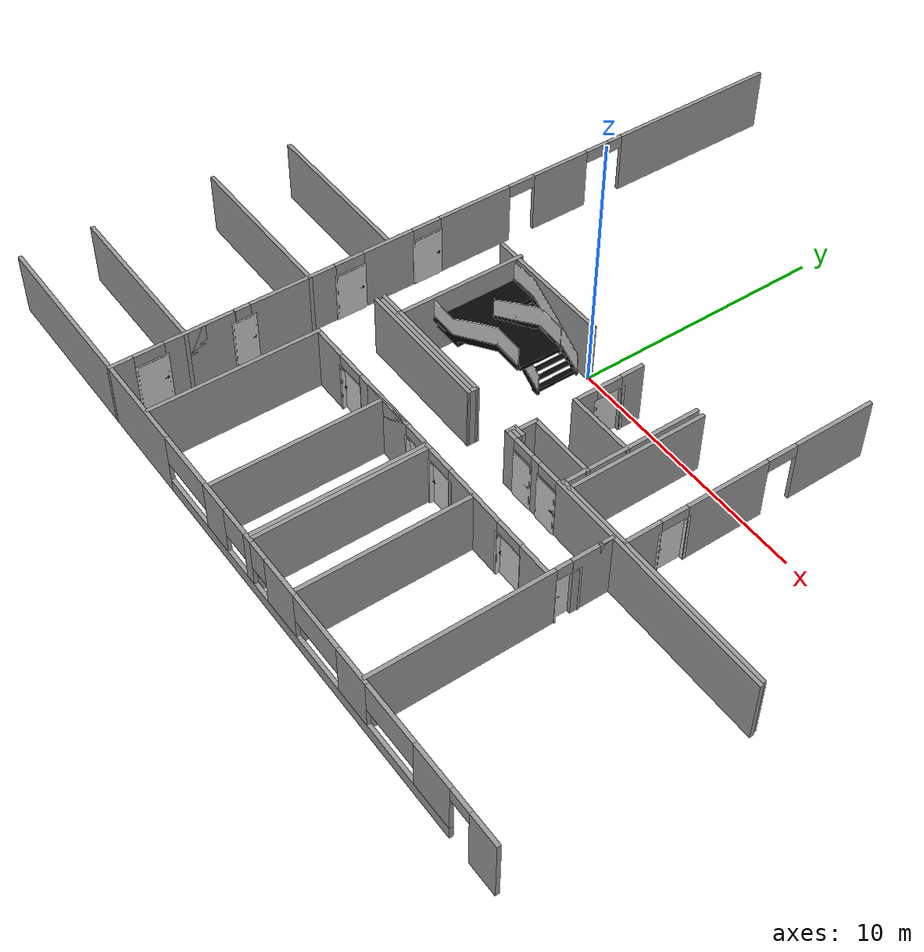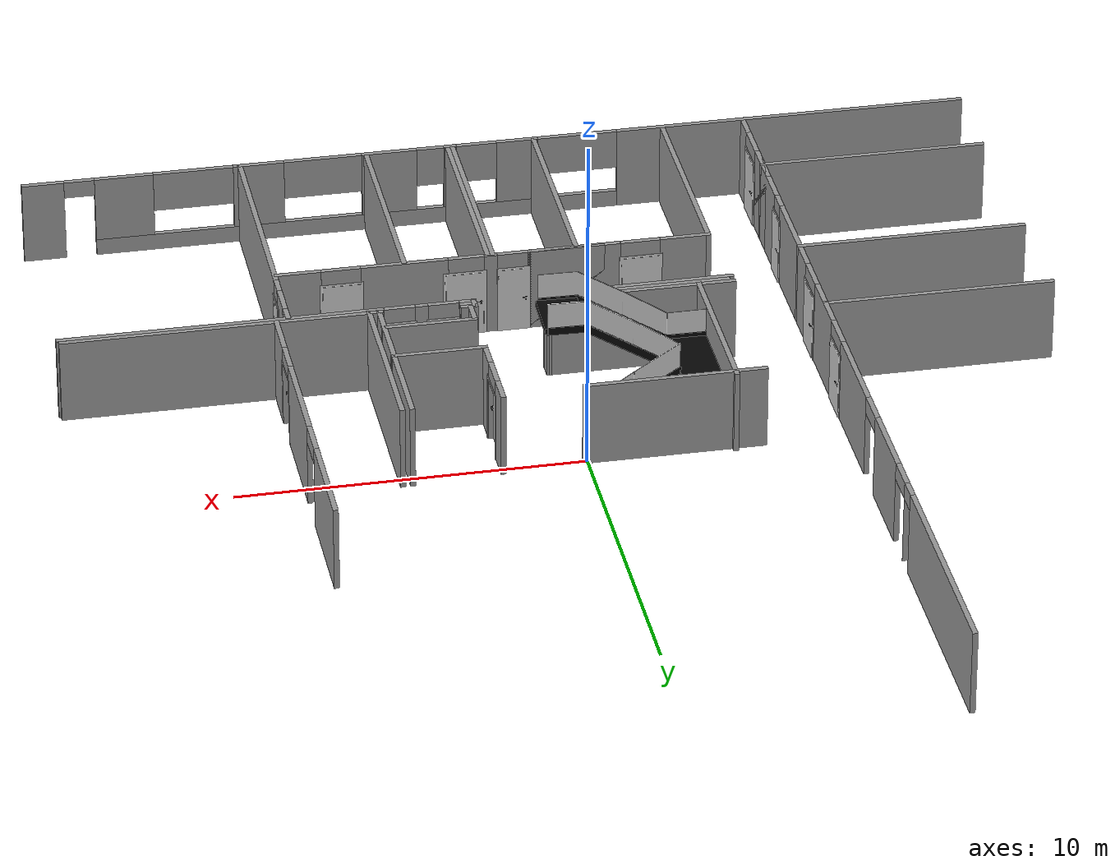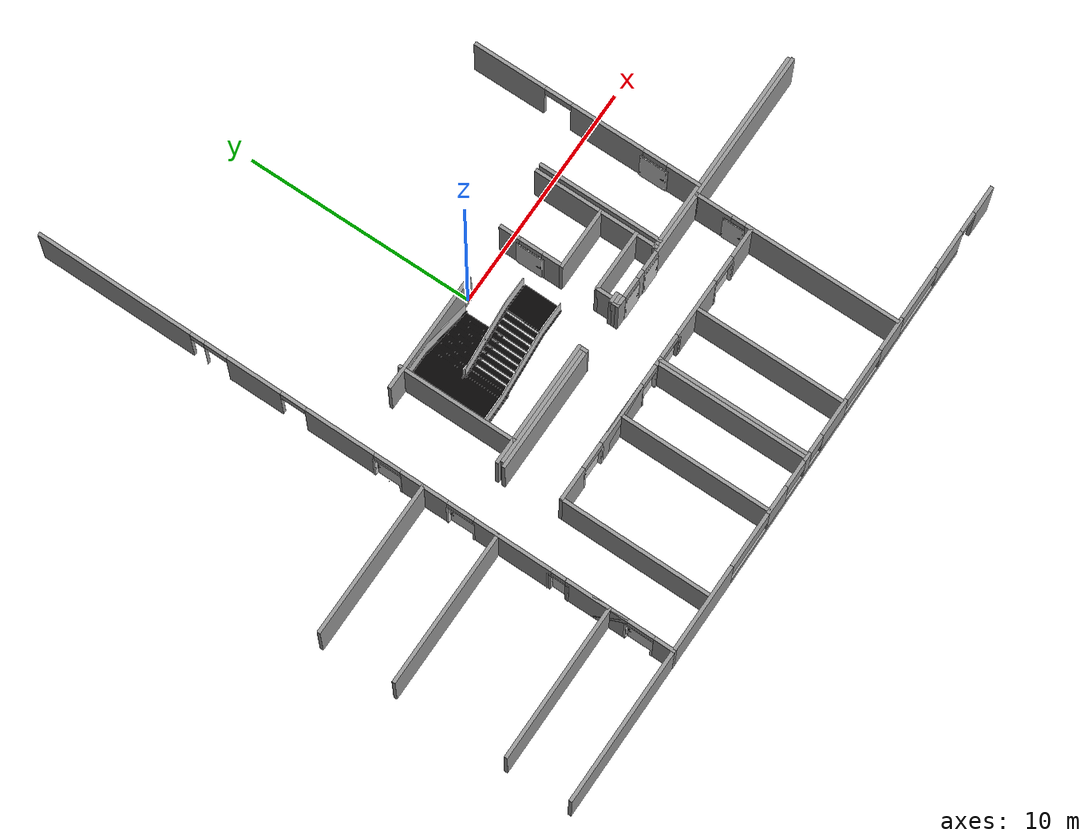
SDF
<sdf version="1.6">
 <world name="default">
  <model name="basement">
   <link name="Wall_100">
    <pose>8.19919 -5.19776 0 0 -0 0</pose>
    <visual name="Wall_100_Visual_0">
     <pose>-5.7562 0 1.25 0 -0 0</pose>
     <geometry><box><size>0.487607 0.15 2.5</size></box></geometry>
     <material>
      <script><uri>file://media/materials/scripts/gazebo.material</uri><name>Gazebo/Grey</name></script>
      <ambient>1 1 1 1</ambient>
     </material>
    </visual>
    <collision name="Wall_100_Collision_0">
     <geometry><box><size>0.487607 0.15 2.5</size></box></geometry>
     <pose>-5.7562 0 1.25 0 -0 0</pose>
    </collision>
    <visual name="Wall_100_Visual_1">
     <pose>-4.42761 0 1.25 0 -0 0</pose>
     <geometry><box><size>0.369565 0.15 2.5</size></box></geometry>
     <material>
      <script><uri>file://media/materials/scripts/gazebo.material</uri><name>Gazebo/Grey</name></script>
      <ambient>1 1 1 1</ambient>
     </material>
    </visual>
    <collision name="Wall_100_Collision_1">
     <geometry><box><size>0.369565 0.15 2.5</size></box></geometry>
     <pose>-4.42761 0 1.25 0 -0 0</pose>
    </collision>
    <visual name="Wall_100_Visual_2">
     <pose>1.32859 0 1.25 0 -0 0</pose>
     <geometry><box><size>9.34283 0.15 2.5</size></box></geometry>
     <material>
      <script><uri>file://media/materials/scripts/gazebo.material</uri><name>Gazebo/Grey</name></script>
      <ambient>1 1 1 1</ambient>
     </material>
    </visual>
    <collision name="Wall_100_Collision_2">
     <geometry><box><size>9.34283 0.15 2.5</size></box></geometry>
     <pose>1.32859 0 1.25 0 -0 0</pose>
    </collision>
    <visual name="Wall_100_Visual_3">
     <pose>-5.06239 0 2.25 0 -0 0</pose>
     <geometry><box><size>0.9 0.15 0.5</size></box></geometry>
     <material>
      <script><uri>file://media/materials/scripts/gazebo.material</uri><name>Gazebo/Grey</name></script>
      <ambient>1 1 1 1</ambient>
     </material>
    </visual>
    <collision name="Wall_100_Collision_3">
     <geometry><box><size>0.9 0.15 0.5</size></box></geometry>
     <pose>-5.06239 0 2.25 0 -0 0</pose>
    </collision>
    <visual name="Wall_100_Visual_4">
     <pose>-3.79283 0 2.25 0 -0 0</pose>
     <geometry><box><size>0.9 0.15 0.5</size></box></geometry>
     <material>
      <script><uri>file://media/materials/scripts/gazebo.material</uri><name>Gazebo/Grey</name></script>
      <ambient>1 1 1 1</ambient>
     </material>
    </visual>
    <collision name="Wall_100_Collision_4">
     <geometry><box><size>0.9 0.15 0.5</size></box></geometry>
     <pose>-3.79283 0 2.25 0 -0 0</pose>
    </collision>
   </link>
   <link name="Wall_102">
    <collision name="Wall_102_Collision">
     <geometry><box><size>9.25 0.15 2.5</size></box></geometry>
     <pose>0 0 1.25 0 -0 0</pose>
    </collision>
    <visual name="Wall_102_Visual">
     <pose>0 0 1.25 0 -0 0</pose>
     <geometry><box><size>9.25 0.15 2.5</size></box></geometry>
     <material>
      <script><uri>file://media/materials/scripts/gazebo.material</uri><name>Gazebo/Grey</name></script>
      <ambient>1 1 1 1</ambient>
     </material>
    </visual>
    <pose>9.51475 -5.05392 0 0 -0 0</pose>
   </link>
   <link name="Wall_104">
    <collision name="Wall_104_Collision">
     <geometry><box><size>5.5 0.15 2.5</size></box></geometry>
     <pose>0 0 1.25 0 -0 0</pose>
    </collision>
    <visual name="Wall_104_Visual">
     <pose>0 0 1.25 0 -0 0</pose>
     <geometry><box><size>5.5 0.15 2.5</size></box></geometry>
     <material>
      <script><uri>file://media/materials/scripts/gazebo.material</uri><name>Gazebo/Grey</name></script>
      <ambient>1 1 1 1</ambient>
     </material>
    </visual>
    <pose>5.28935 -2.40756 0 0 0 -1.5708</pose>
   </link>
   <link name="Wall_11">
    <collision name="Wall_11_Collision">
     <geometry><box><size>6.75 0.15 2.5</size></box></geometry>
     <pose>0 0 1.25 0 -0 0</pose>
    </collision>
    <visual name="Wall_11_Visual">
     <pose>0 0 1.25 0 -0 0</pose>
     <geometry><box><size>6.75 0.15 2.5</size></box></geometry>
     <material>
      <script><uri>file://media/materials/scripts/gazebo.material</uri><name>Gazebo/Grey</name></script>
      <ambient>1 1 1 1</ambient>
     </material>
    </visual>
    <pose>-10.8091 -11.3705 0 0 -0 0</pose>
   </link>
   <link name="Wall_112">
    <collision name="Wall_112_Collision">
     <geometry><box><size>5.5 0.15 2.5</size></box></geometry>
     <pose>0 0 1.25 0 -0 0</pose>
    </collision>
    <visual name="Wall_112_Visual">
     <pose>0 0 1.25 0 -0 0</pose>
     <geometry><box><size>5.5 0.15 2.5</size></box></geometry>
     <material>
      <script><uri>file://media/materials/scripts/gazebo.material</uri><name>Gazebo/Grey</name></script>
      <ambient>1 1 1 1</ambient>
     </material>
    </visual>
    <pose>5.00796 -2.4103 0 0 0 -1.5708</pose>
   </link>
   <link name="Wall_118">
    <pose>2.41948 -1.1745 0 0 -0 1.5708</pose>
    <visual name="Wall_118_Visual_0">
     <pose>-0.97086 0 1.25 0 -0 0</pose>
     <geometry><box><size>0.808281 0.15 2.5</size></box></geometry>
     <material>
      <script><uri>file://media/materials/scripts/gazebo.material</uri><name>Gazebo/Grey</name></script>
      <ambient>1 1 1 1</ambient>
     </material>
    </visual>
    <collision name="Wall_118_Collision_0">
     <geometry><box><size>0.808281 0.15 2.5</size></box></geometry>
     <pose>-0.97086 0 1.25 0 -0 0</pose>
    </collision>
    <visual name="Wall_118_Visual_1">
     <pose>0.913802 0 1.25 0 -0 0</pose>
     <geometry><box><size>0.922397 0.15 2.5</size></box></geometry>
     <material>
      <script><uri>file://media/materials/scripts/gazebo.material</uri><name>Gazebo/Grey</name></script>
      <ambient>1 1 1 1</ambient>
     </material>
    </visual>
    <collision name="Wall_118_Collision_1">
     <geometry><box><size>0.922397 0.15 2.5</size></box></geometry>
     <pose>0.913802 0 1.25 0 -0 0</pose>
    </collision>
    <visual name="Wall_118_Visual_2">
     <pose>-0.057058 0 2.25 0 -0 0</pose>
     <geometry><box><size>1.01932 0.15 0.5</size></box></geometry>
     <material>
      <script><uri>file://media/materials/scripts/gazebo.material</uri><name>Gazebo/Grey</name></script>
      <ambient>1 1 1 1</ambient>
     </material>
    </visual>
    <collision name="Wall_118_Collision_2">
     <geometry><box><size>1.01932 0.15 0.5</size></box></geometry>
     <pose>-0.057058 0 2.25 0 -0 0</pose>
    </collision>
   </link>
   <link name="Wall_120">
    <collision name="Wall_120_Collision">
     <geometry><box><size>2.75 0.15 2.5</size></box></geometry>
     <pose>0 0 1.25 0 -0 0</pose>
    </collision>
    <visual name="Wall_120_Visual">
     <pose>0 0 1.25 0 -0 0</pose>
     <geometry><box><size>2.75 0.15 2.5</size></box></geometry>
     <material>
      <script><uri>file://media/materials/scripts/gazebo.material</uri><name>Gazebo/Grey</name></script>
      <ambient>1 1 1 1</ambient>
     </material>
    </visual>
    <pose>3.71948 -2.60376 0 0 -0 0</pose>
   </link>
   <link name="Wall_122">
    <collision name="Wall_122_Collision">
     <geometry><box><size>2.75 0.15 2.5</size></box></geometry>
     <pose>0 0 1.25 0 -0 0</pose>
    </collision>
    <visual name="Wall_122_Visual">
     <pose>0 0 1.25 0 -0 0</pose>
     <geometry><box><size>2.75 0.15 2.5</size></box></geometry>
     <material>
      <script><uri>file://media/materials/scripts/gazebo.material</uri><name>Gazebo/Grey</name></script>
      <ambient>1 1 1 1</ambient>
     </material>
    </visual>
    <pose>3.71502 -4.18637 0 0 -0 0</pose>
   </link>
   <link name="Wall_124">
    <collision name="Wall_124_Collision">
     <geometry><box><size>0.5 0.15 2.5</size></box></geometry>
     <pose>0 0 1.25 0 -0 0</pose>
    </collision>
    <visual name="Wall_124_Visual">
     <pose>0 0 1.25 0 -0 0</pose>
     <geometry><box><size>0.5 0.15 2.5</size></box></geometry>
     <material>
      <script><uri>file://media/materials/scripts/gazebo.material</uri><name>Gazebo/Grey</name></script>
      <ambient>1 1 1 1</ambient>
     </material>
    </visual>
    <pose>2.45081 -4.90231 0 0 -0 0</pose>
   </link>
   <link name="Wall_126">
    <collision name="Wall_126_Collision">
     <geometry><box><size>0.4 0.15 2.5</size></box></geometry>
     <pose>0 0 1.25 0 -0 0</pose>
    </collision>
    <visual name="Wall_126_Visual">
     <pose>0 0 1.25 0 -0 0</pose>
     <geometry><box><size>0.4 0.15 2.5</size></box></geometry>
     <material>
      <script><uri>file://media/materials/scripts/gazebo.material</uri><name>Gazebo/Grey</name></script>
      <ambient>1 1 1 1</ambient>
     </material>
    </visual>
    <pose>2.27581 -5.05714 0 0 0 -1.5708</pose>
   </link>
   <link name="Wall_128">
    <collision name="Wall_128_Collision">
     <geometry><box><size>0.75 0.15 2.5</size></box></geometry>
     <pose>0 0 1.25 0 -0 0</pose>
    </collision>
    <visual name="Wall_128_Visual">
     <pose>0 0 1.25 0 -0 0</pose>
     <geometry><box><size>0.75 0.15 2.5</size></box></geometry>
     <material>
      <script><uri>file://media/materials/scripts/gazebo.material</uri><name>Gazebo/Grey</name></script>
      <ambient>1 1 1 1</ambient>
     </material>
    </visual>
    <pose>2.41502 -4.54603 0 0 0 -1.5708</pose>
   </link>
   <link name="Wall_13">
    <collision name="Wall_13_Collision">
     <geometry><box><size>6.75 0.15 2.5</size></box></geometry>
     <pose>0 0 1.25 0 -0 0</pose>
    </collision>
    <visual name="Wall_13_Visual">
     <pose>0 0 1.25 0 -0 0</pose>
     <geometry><box><size>6.75 0.15 2.5</size></box></geometry>
     <material>
      <script><uri>file://media/materials/scripts/gazebo.material</uri><name>Gazebo/Grey</name></script>
      <ambient>1 1 1 1</ambient>
     </material>
    </visual>
    <pose>-10.8096 -6.47351 0 0 -0 0</pose>
   </link>
   <link name="Wall_130">
    <pose>7.59342 -9.67316 0 0 -0 1.5708</pose>
    <visual name="Wall_130_Visual_0">
     <pose>-1.10011 0 1.25 0 -0 0</pose>
     <geometry><box><size>6.79978 0.15 2.5</size></box></geometry>
     <material>
      <script><uri>file://media/materials/scripts/gazebo.material</uri><name>Gazebo/Grey</name></script>
      <ambient>1 1 1 1</ambient>
     </material>
    </visual>
    <collision name="Wall_130_Collision_0">
     <geometry><box><size>6.79978 0.15 2.5</size></box></geometry>
     <pose>-1.10011 0 1.25 0 -0 0</pose>
    </collision>
    <visual name="Wall_130_Visual_1">
     <pose>3.69951 0 1.25 0 -0 0</pose>
     <geometry><box><size>1.60098 0.15 2.5</size></box></geometry>
     <material>
      <script><uri>file://media/materials/scripts/gazebo.material</uri><name>Gazebo/Grey</name></script>
      <ambient>1 1 1 1</ambient>
     </material>
    </visual>
    <collision name="Wall_130_Collision_1">
     <geometry><box><size>1.60098 0.15 2.5</size></box></geometry>
     <pose>3.69951 0 1.25 0 -0 0</pose>
    </collision>
    <visual name="Wall_130_Visual_2">
     <pose>4.21195 0 1.25 0 -0 0</pose>
     <geometry><box><size>0.576095 0.15 2.5</size></box></geometry>
     <material>
      <script><uri>file://media/materials/scripts/gazebo.material</uri><name>Gazebo/Grey</name></script>
      <ambient>1 1 1 1</ambient>
     </material>
    </visual>
    <collision name="Wall_130_Collision_2">
     <geometry><box><size>0.576095 0.15 2.5</size></box></geometry>
     <pose>4.21195 0 1.25 0 -0 0</pose>
    </collision>
    <visual name="Wall_130_Visual_3">
     <pose>2.59646 0 2.25 0 -0 0</pose>
     <geometry><box><size>0.593362 0.15 0.5</size></box></geometry>
     <material>
      <script><uri>file://media/materials/scripts/gazebo.material</uri><name>Gazebo/Grey</name></script>
      <ambient>1 1 1 1</ambient>
     </material>
    </visual>
    <collision name="Wall_130_Collision_3">
     <geometry><box><size>0.593362 0.15 0.5</size></box></geometry>
     <pose>2.59646 0 2.25 0 -0 0</pose>
    </collision>
   </link>
   <link name="Wall_132">
    <collision name="Wall_132_Collision">
     <geometry><box><size>6.6 0.15 2.5</size></box></geometry>
     <pose>0 0 1.25 0 -0 0</pose>
    </collision>
    <visual name="Wall_132_Visual">
     <pose>0 0 1.25 0 -0 0</pose>
     <geometry><box><size>6.6 0.15 2.5</size></box></geometry>
     <material>
      <script><uri>file://media/materials/scripts/gazebo.material</uri><name>Gazebo/Grey</name></script>
      <ambient>1 1 1 1</ambient>
     </material>
    </visual>
    <pose>-5.06165 -10.8664 0 0 0 -1.5708</pose>
   </link>
   <link name="Wall_134">
    <pose>1.23835 -7.64141 0 0 -0 0</pose>
    <visual name="Wall_134_Visual_0">
     <pose>-5.62659 0 1.25 0 -0 0</pose>
     <geometry><box><size>1.49682 0.15 2.5</size></box></geometry>
     <material>
      <script><uri>file://media/materials/scripts/gazebo.material</uri><name>Gazebo/Grey</name></script>
      <ambient>1 1 1 1</ambient>
     </material>
    </visual>
    <collision name="Wall_134_Collision_0">
     <geometry><box><size>1.49682 0.15 2.5</size></box></geometry>
     <pose>-5.62659 0 1.25 0 -0 0</pose>
    </collision>
    <visual name="Wall_134_Visual_1">
     <pose>-2.35576 0 1.25 0 -0 0</pose>
     <geometry><box><size>2.70875 0.15 2.5</size></box></geometry>
     <material>
      <script><uri>file://media/materials/scripts/gazebo.material</uri><name>Gazebo/Grey</name></script>
      <ambient>1 1 1 1</ambient>
     </material>
    </visual>
    <collision name="Wall_134_Collision_1">
     <geometry><box><size>2.70875 0.15 2.5</size></box></geometry>
     <pose>-2.35576 0 1.25 0 -0 0</pose>
    </collision>
    <visual name="Wall_134_Visual_2">
     <pose>-2.12152 0 1.25 0 -0 0</pose>
     <geometry><box><size>2.24027 0.15 2.5</size></box></geometry>
     <material>
      <script><uri>file://media/materials/scripts/gazebo.material</uri><name>Gazebo/Grey</name></script>
      <ambient>1 1 1 1</ambient>
     </material>
    </visual>
    <collision name="Wall_134_Collision_2">
     <geometry><box><size>2.24027 0.15 2.5</size></box></geometry>
     <pose>-2.12152 0 1.25 0 -0 0</pose>
    </collision>
    <visual name="Wall_134_Visual_3">
     <pose>0.087487 0 1.25 0 -0 0</pose>
     <geometry><box><size>0.377744 0.15 2.5</size></box></geometry>
     <material>
      <script><uri>file://media/materials/scripts/gazebo.material</uri><name>Gazebo/Grey</name></script>
      <ambient>1 1 1 1</ambient>
     </material>
    </visual>
    <collision name="Wall_134_Collision_3">
     <geometry><box><size>0.377744 0.15 2.5</size></box></geometry>
     <pose>0.087487 0 1.25 0 -0 0</pose>
    </collision>
    <visual name="Wall_134_Visual_4">
     <pose>2.60072 0 1.25 0 -0 0</pose>
     <geometry><box><size>2.55041 0.15 2.5</size></box></geometry>
     <material>
      <script><uri>file://media/materials/scripts/gazebo.material</uri><name>Gazebo/Grey</name></script>
      <ambient>1 1 1 1</ambient>
     </material>
    </visual>
    <collision name="Wall_134_Collision_4">
     <geometry><box><size>2.55041 0.15 2.5</size></box></geometry>
     <pose>2.60072 0 1.25 0 -0 0</pose>
    </collision>
    <visual name="Wall_134_Visual_5">
     <pose>5.69975 0 1.25 0 -0 0</pose>
     <geometry><box><size>1.35049 0.15 2.5</size></box></geometry>
     <material>
      <script><uri>file://media/materials/scripts/gazebo.material</uri><name>Gazebo/Grey</name></script>
      <ambient>1 1 1 1</ambient>
     </material>
    </visual>
    <collision name="Wall_134_Collision_5">
     <geometry><box><size>1.35049 0.15 2.5</size></box></geometry>
     <pose>5.69975 0 1.25 0 -0 0</pose>
    </collision>
    <visual name="Wall_134_Visual_6">
     <pose>-4.29684 0 2.25 0 -0 0</pose>
     <geometry><box><size>1.16267 0.15 0.5</size></box></geometry>
     <material>
      <script><uri>file://media/materials/scripts/gazebo.material</uri><name>Gazebo/Grey</name></script>
      <ambient>1 1 1 1</ambient>
     </material>
    </visual>
    <collision name="Wall_134_Collision_6">
     <geometry><box><size>1.16267 0.15 0.5</size></box></geometry>
     <pose>-4.29684 0 2.25 0 -0 0</pose>
    </collision>
    <visual name="Wall_134_Visual_7">
     <pose>-0.551385 0 2.25 0 -0 0</pose>
     <geometry><box><size>0.9 0.15 0.5</size></box></geometry>
     <material>
      <script><uri>file://media/materials/scripts/gazebo.material</uri><name>Gazebo/Grey</name></script>
      <ambient>1 1 1 1</ambient>
     </material>
    </visual>
    <collision name="Wall_134_Collision_7">
     <geometry><box><size>0.9 0.15 0.5</size></box></geometry>
     <pose>-0.551385 0 2.25 0 -0 0</pose>
    </collision>
    <visual name="Wall_134_Visual_8">
     <pose>-0.551385 0 2.25 0 -0 0</pose>
     <geometry><box><size>0.9 0.15 0.5</size></box></geometry>
     <material>
      <script><uri>file://media/materials/scripts/gazebo.material</uri><name>Gazebo/Grey</name></script>
      <ambient>1 1 1 1</ambient>
     </material>
    </visual>
    <collision name="Wall_134_Collision_8">
     <geometry><box><size>0.9 0.15 0.5</size></box></geometry>
     <pose>-0.551385 0 2.25 0 -0 0</pose>
    </collision>
    <visual name="Wall_134_Visual_9">
     <pose>0.800936 0 2.25 0 -0 0</pose>
     <geometry><box><size>1.04915 0.15 0.5</size></box></geometry>
     <material>
      <script><uri>file://media/materials/scripts/gazebo.material</uri><name>Gazebo/Grey</name></script>
      <ambient>1 1 1 1</ambient>
     </material>
    </visual>
    <collision name="Wall_134_Collision_9">
     <geometry><box><size>1.04915 0.15 0.5</size></box></geometry>
     <pose>0.800936 0 2.25 0 -0 0</pose>
    </collision>
    <visual name="Wall_134_Visual_10">
     <pose>4.45021 0 2.25 0 -0 0</pose>
     <geometry><box><size>1.14859 0.15 0.5</size></box></geometry>
     <material>
      <script><uri>file://media/materials/scripts/gazebo.material</uri><name>Gazebo/Grey</name></script>
      <ambient>1 1 1 1</ambient>
     </material>
    </visual>
    <collision name="Wall_134_Collision_10">
     <geometry><box><size>1.14859 0.15 0.5</size></box></geometry>
     <pose>4.45021 0 2.25 0 -0 0</pose>
    </collision>
   </link>
   <link name="Wall_136">
    <collision name="Wall_136_Collision">
     <geometry><box><size>6.5 0.15 2.5</size></box></geometry>
     <pose>0 0 1.25 0 -0 0</pose>
    </collision>
    <visual name="Wall_136_Visual">
     <pose>0 0 1.25 0 -0 0</pose>
     <geometry><box><size>6.5 0.15 2.5</size></box></geometry>
     <material>
      <script><uri>file://media/materials/scripts/gazebo.material</uri><name>Gazebo/Grey</name></script>
      <ambient>1 1 1 1</ambient>
     </material>
    </visual>
    <pose>-1.17554 -10.926 0 0 -0 1.5708</pose>
   </link>
   <link name="Wall_138">
    <collision name="Wall_138_Collision">
     <geometry><box><size>6.5 0.15 2.5</size></box></geometry>
     <pose>0 0 1.25 0 -0 0</pose>
    </collision>
    <visual name="Wall_138_Visual">
     <pose>0 0 1.25 0 -0 0</pose>
     <geometry><box><size>6.5 0.15 2.5</size></box></geometry>
     <material>
      <script><uri>file://media/materials/scripts/gazebo.material</uri><name>Gazebo/Grey</name></script>
      <ambient>1 1 1 1</ambient>
     </material>
    </visual>
    <pose>1.2636 -10.87 0 0 -0 1.5708</pose>
   </link>
   <link name="Wall_140">
    <collision name="Wall_140_Collision">
     <geometry><box><size>6.5 0.15 2.5</size></box></geometry>
     <pose>0 0 1.25 0 -0 0</pose>
    </collision>
    <visual name="Wall_140_Visual">
     <pose>0 0 1.25 0 -0 0</pose>
     <geometry><box><size>6.5 0.15 2.5</size></box></geometry>
     <material>
      <script><uri>file://media/materials/scripts/gazebo.material</uri><name>Gazebo/Grey</name></script>
      <ambient>1 1 1 1</ambient>
     </material>
    </visual>
    <pose>1.40771 -10.8804 0 0 0 -1.5708</pose>
   </link>
   <link name="Wall_142">
    <collision name="Wall_142_Collision">
     <geometry><box><size>6.5 0.15 2.5</size></box></geometry>
     <pose>0 0 1.25 0 -0 0</pose>
    </collision>
    <visual name="Wall_142_Visual">
     <pose>0 0 1.25 0 -0 0</pose>
     <geometry><box><size>6.5 0.15 2.5</size></box></geometry>
     <material>
      <script><uri>file://media/materials/scripts/gazebo.material</uri><name>Gazebo/Grey</name></script>
      <ambient>1 1 1 1</ambient>
     </material>
    </visual>
    <pose>3.84111 -10.8753 0 0 0 -1.5708</pose>
   </link>
   <link name="Wall_144">
    <collision name="Wall_144_Collision">
     <geometry><box><size>5.25 0.15 2.5</size></box></geometry>
     <pose>0 0 1.25 0 -0 0</pose>
    </collision>
    <visual name="Wall_144_Visual">
     <pose>0 0 1.25 0 -0 0</pose>
     <geometry><box><size>5.25 0.15 2.5</size></box></geometry>
     <material>
      <script><uri>file://media/materials/scripts/gazebo.material</uri><name>Gazebo/Grey</name></script>
      <ambient>1 1 1 1</ambient>
     </material>
    </visual>
    <pose>-2.51608 -5.05083 0 0 -0 0</pose>
   </link>
   <link name="Wall_15">
    <collision name="Wall_15_Collision">
     <geometry><box><size>6.75 0.15 2.5</size></box></geometry>
     <pose>0 0 1.25 0 -0 0</pose>
    </collision>
    <visual name="Wall_15_Visual">
     <pose>0 0 1.25 0 -0 0</pose>
     <geometry><box><size>6.75 0.15 2.5</size></box></geometry>
     <material>
      <script><uri>file://media/materials/scripts/gazebo.material</uri><name>Gazebo/Grey</name></script>
      <ambient>1 1 1 1</ambient>
     </material>
    </visual>
    <pose>-10.8156 -3.17919 0 0 -0 0</pose>
   </link>
   <link name="Wall_154">
    <collision name="Wall_154_Collision">
     <geometry><box><size>0.4 0.15 2.5</size></box></geometry>
     <pose>0 0 1.25 0 -0 0</pose>
    </collision>
    <visual name="Wall_154_Visual">
     <pose>0 0 1.25 0 -0 0</pose>
     <geometry><box><size>0.4 0.15 2.5</size></box></geometry>
     <material>
      <script><uri>file://media/materials/scripts/gazebo.material</uri><name>Gazebo/Grey</name></script>
      <ambient>1 1 1 1</ambient>
     </material>
    </visual>
    <pose>2.49747 -5.04803 0 0 -0 0</pose>
   </link>
   <link name="Wall_2">
    <pose>-0.075421 -14.1732 0 0 -0 0</pose>
    <visual name="Wall_2_Visual_0">
     <pose>-8.86891 0 1.25 0 -0 0</pose>
     <geometry><box><size>10.5122 0.15 2.5</size></box></geometry>
     <material>
      <script><uri>file://media/materials/scripts/gazebo.material</uri><name>Gazebo/Grey</name></script>
      <ambient>1 1 1 1</ambient>
     </material>
    </visual>
    <collision name="Wall_2_Collision_0">
     <geometry><box><size>10.5122 0.15 2.5</size></box></geometry>
     <pose>-8.86891 0 1.25 0 -0 0</pose>
    </collision>
    <visual name="Wall_2_Visual_1">
     <pose>13.5044 0 1.25 0 -0 0</pose>
     <geometry><box><size>1.2411 0.15 2.5</size></box></geometry>
     <material>
      <script><uri>file://media/materials/scripts/gazebo.material</uri><name>Gazebo/Grey</name></script>
      <ambient>1 1 1 1</ambient>
     </material>
    </visual>
    <collision name="Wall_2_Collision_1">
     <geometry><box><size>1.2411 0.15 2.5</size></box></geometry>
     <pose>13.5044 0 1.25 0 -0 0</pose>
    </collision>
    <visual name="Wall_2_Visual_2">
     <pose>4.18554 0 0.25 0 -0 0</pose>
     <geometry><box><size>15.5967 0.15 0.5</size></box></geometry>
     <material>
      <script><uri>file://media/materials/scripts/gazebo.material</uri><name>Gazebo/Grey</name></script>
      <ambient>1 1 1 1</ambient>
     </material>
    </visual>
    <collision name="Wall_2_Collision_2">
     <geometry><box><size>15.5967 0.15 0.5</size></box></geometry>
     <pose>4.18554 0 0.25 0 -0 0</pose>
    </collision>
    <visual name="Wall_2_Visual_3">
     <pose>-0.601968 0 1.5 0 -0 0</pose>
     <geometry><box><size>1.2477 0.15 2</size></box></geometry>
     <material>
      <script><uri>file://media/materials/scripts/gazebo.material</uri><name>Gazebo/Grey</name></script>
      <ambient>1 1 1 1</ambient>
     </material>
    </visual>
    <collision name="Wall_2_Collision_3">
     <geometry><box><size>1.2477 0.15 2</size></box></geometry>
     <pose>-0.601968 0 1.5 0 -0 0</pose>
    </collision>
    <visual name="Wall_2_Visual_4">
     <pose>1.40722 0 1.5 0 -0 0</pose>
     <geometry><box><size>0.388736 0.15 2</size></box></geometry>
     <material>
      <script><uri>file://media/materials/scripts/gazebo.material</uri><name>Gazebo/Grey</name></script>
      <ambient>1 1 1 1</ambient>
     </material>
    </visual>
    <collision name="Wall_2_Collision_4">
     <geometry><box><size>0.388736 0.15 2</size></box></geometry>
     <pose>1.40722 0 1.5 0 -0 0</pose>
    </collision>
    <visual name="Wall_2_Visual_5">
     <pose>3.23091 0 1.5 0 -0 0</pose>
     <geometry><box><size>1.64359 0.15 2</size></box></geometry>
     <material>
      <script><uri>file://media/materials/scripts/gazebo.material</uri><name>Gazebo/Grey</name></script>
      <ambient>1 1 1 1</ambient>
     </material>
    </visual>
    <collision name="Wall_2_Collision_5">
     <geometry><box><size>1.64359 0.15 2</size></box></geometry>
     <pose>3.23091 0 1.5 0 -0 0</pose>
    </collision>
    <visual name="Wall_2_Visual_6">
     <pose>7.12509 0 1.5 0 -0 0</pose>
     <geometry><box><size>1.50721 0.15 2</size></box></geometry>
     <material>
      <script><uri>file://media/materials/scripts/gazebo.material</uri><name>Gazebo/Grey</name></script>
      <ambient>1 1 1 1</ambient>
     </material>
    </visual>
    <collision name="Wall_2_Collision_6">
     <geometry><box><size>1.50721 0.15 2</size></box></geometry>
     <pose>7.12509 0 1.5 0 -0 0</pose>
    </collision>
    <visual name="Wall_2_Visual_7">
     <pose>11.1159 0 1.5 0 -0 0</pose>
     <geometry><box><size>1.73607 0.15 2</size></box></geometry>
     <material>
      <script><uri>file://media/materials/scripts/gazebo.material</uri><name>Gazebo/Grey</name></script>
      <ambient>1 1 1 1</ambient>
     </material>
    </visual>
    <collision name="Wall_2_Collision_7">
     <geometry><box><size>1.73607 0.15 2</size></box></geometry>
     <pose>11.1159 0 1.5 0 -0 0</pose>
    </collision>
    <visual name="Wall_2_Visual_8">
     <pose>-2.41932 0 1.9 0 -0 0</pose>
     <geometry><box><size>2.387 0.15 1.2</size></box></geometry>
     <material>
      <script><uri>file://media/materials/scripts/gazebo.material</uri><name>Gazebo/Grey</name></script>
      <ambient>1 1 1 1</ambient>
     </material>
    </visual>
    <collision name="Wall_2_Collision_8">
     <geometry><box><size>2.387 0.15 1.2</size></box></geometry>
     <pose>-2.41932 0 1.9 0 -0 0</pose>
    </collision>
    <visual name="Wall_2_Visual_9">
     <pose>0.617368 0 1.9 0 -0 0</pose>
     <geometry><box><size>1.19097 0.15 1.2</size></box></geometry>
     <material>
      <script><uri>file://media/materials/scripts/gazebo.material</uri><name>Gazebo/Grey</name></script>
      <ambient>1 1 1 1</ambient>
     </material>
    </visual>
    <collision name="Wall_2_Collision_9">
     <geometry><box><size>1.19097 0.15 1.2</size></box></geometry>
     <pose>0.617368 0 1.9 0 -0 0</pose>
    </collision>
    <visual name="Wall_2_Visual_10">
     <pose>2.00535 0 1.9 0 -0 0</pose>
     <geometry><box><size>0.807519 0.15 1.2</size></box></geometry>
     <material>
      <script><uri>file://media/materials/scripts/gazebo.material</uri><name>Gazebo/Grey</name></script>
      <ambient>1 1 1 1</ambient>
     </material>
    </visual>
    <collision name="Wall_2_Collision_10">
     <geometry><box><size>0.807519 0.15 1.2</size></box></geometry>
     <pose>2.00535 0 1.9 0 -0 0</pose>
    </collision>
    <visual name="Wall_2_Visual_11">
     <pose>5.21209 0 1.9 0 -0 0</pose>
     <geometry><box><size>2.31879 0.15 1.2</size></box></geometry>
     <material>
      <script><uri>file://media/materials/scripts/gazebo.material</uri><name>Gazebo/Grey</name></script>
      <ambient>1 1 1 1</ambient>
     </material>
    </visual>
    <collision name="Wall_2_Collision_11">
     <geometry><box><size>2.31879 0.15 1.2</size></box></geometry>
     <pose>5.21209 0 1.9 0 -0 0</pose>
    </collision>
    <visual name="Wall_2_Visual_12">
     <pose>9.06327 0 1.9 0 -0 0</pose>
     <geometry><box><size>2.36913 0.15 1.2</size></box></geometry>
     <material>
      <script><uri>file://media/materials/scripts/gazebo.material</uri><name>Gazebo/Grey</name></script>
      <ambient>1 1 1 1</ambient>
     </material>
    </visual>
    <collision name="Wall_2_Collision_12">
     <geometry><box><size>2.36913 0.15 1.2</size></box></geometry>
     <pose>9.06327 0 1.9 0 -0 0</pose>
    </collision>
    <visual name="Wall_2_Visual_13">
     <pose>12.4339 0 2.25 0 -0 0</pose>
     <geometry><box><size>0.9 0.15 0.5</size></box></geometry>
     <material>
      <script><uri>file://media/materials/scripts/gazebo.material</uri><name>Gazebo/Grey</name></script>
      <ambient>1 1 1 1</ambient>
     </material>
    </visual>
    <collision name="Wall_2_Collision_13">
     <geometry><box><size>0.9 0.15 0.5</size></box></geometry>
     <pose>12.4339 0 2.25 0 -0 0</pose>
    </collision>
   </link>
   <link name="Wall_75">
    <collision name="Wall_75_Collision">
     <geometry><box><size>5.25 0.15 2.5</size></box></geometry>
     <pose>0 0 1.25 0 -0 0</pose>
    </collision>
    <visual name="Wall_75_Visual">
     <pose>0 0 1.25 0 -0 0</pose>
     <geometry><box><size>5.25 0.15 2.5</size></box></geometry>
     <material>
      <script><uri>file://media/materials/scripts/gazebo.material</uri><name>Gazebo/Grey</name></script>
      <ambient>1 1 1 1</ambient>
     </material>
    </visual>
    <pose>-4.20961 -2.42778 0 0 0 -1.5708</pose>
   </link>
   <link name="Wall_77">
    <collision name="Wall_77_Collision">
     <geometry><box><size>5.5 0.15 2.5</size></box></geometry>
     <pose>0 0 1.25 0 -0 0</pose>
    </collision>
    <visual name="Wall_77_Visual">
     <pose>0 0 1.25 0 -0 0</pose>
     <geometry><box><size>5.5 0.15 2.5</size></box></geometry>
     <material>
      <script><uri>file://media/materials/scripts/gazebo.material</uri><name>Gazebo/Grey</name></script>
      <ambient>1 1 1 1</ambient>
     </material>
    </visual>
    <pose>-2.52602 -4.90328 0 0 -0 3.14159</pose>
   </link>
   <link name="Wall_80">
    <collision name="Wall_80_Collision">
     <geometry><box><size>5.5 0.15 2.5</size></box></geometry>
     <pose>0 0 1.25 0 -0 0</pose>
    </collision>
    <visual name="Wall_80_Visual">
     <pose>0 0 1.25 0 -0 0</pose>
     <geometry><box><size>5.5 0.15 2.5</size></box></geometry>
     <material>
      <script><uri>file://media/materials/scripts/gazebo.material</uri><name>Gazebo/Grey</name></script>
      <ambient>1 1 1 1</ambient>
     </material>
    </visual>
    <pose>-2.52777 -5.2005 0 0 -0 0</pose>
   </link>
   <link name="Wall_82">
    <collision name="Wall_82_Collision">
     <geometry><box><size>0.447229 0.15 2.5</size></box></geometry>
     <pose>0 0 1.25 0 -0 0</pose>
    </collision>
    <visual name="Wall_82_Visual">
     <pose>0 0 1.25 0 -0 0</pose>
     <geometry><box><size>0.447229 0.15 2.5</size></box></geometry>
     <material>
      <script><uri>file://media/materials/scripts/gazebo.material</uri><name>Gazebo/Grey</name></script>
      <ambient>1 1 1 1</ambient>
     </material>
    </visual>
    <pose>0.148107 -5.05189 0 0 -0 1.56492</pose>
   </link>
   <link name="Wall_85">
    <collision name="Wall_85_Collision">
     <geometry><box><size>5.25 0.15 2.5</size></box></geometry>
     <pose>0 0 1.25 0 -0 0</pose>
    </collision>
    <visual name="Wall_85_Visual">
     <pose>0 0 1.25 0 -0 0</pose>
     <geometry><box><size>5.25 0.15 2.5</size></box></geometry>
     <material>
      <script><uri>file://media/materials/scripts/gazebo.material</uri><name>Gazebo/Grey</name></script>
      <ambient>1 1 1 1</ambient>
     </material>
    </visual>
    <pose>-2.49641 -0.007131 0 0 -0 3.14159</pose>
   </link>
   <link name="Wall_9">
    <pose>-7.5098 -0.001772 0 0 0 -1.5708</pose>
    <visual name="Wall_9_Visual_0">
     <pose>-10.7651 0 1.25 0 -0 0</pose>
     <geometry><box><size>6.96988 0.15 2.5</size></box></geometry>
     <material>
      <script><uri>file://media/materials/scripts/gazebo.material</uri><name>Gazebo/Grey</name></script>
      <ambient>1 1 1 1</ambient>
     </material>
    </visual>
    <collision name="Wall_9_Collision_0">
     <geometry><box><size>6.96988 0.15 2.5</size></box></geometry>
     <pose>-10.7651 0 1.25 0 -0 0</pose>
    </collision>
    <visual name="Wall_9_Visual_1">
     <pose>-6.6572 0 1.25 0 -0 0</pose>
     <geometry><box><size>0.001376 0.15 2.5</size></box></geometry>
     <material>
      <script><uri>file://media/materials/scripts/gazebo.material</uri><name>Gazebo/Grey</name></script>
      <ambient>1 1 1 1</ambient>
     </material>
    </visual>
    <collision name="Wall_9_Collision_1">
     <geometry><box><size>0.001376 0.15 2.5</size></box></geometry>
     <pose>-6.6572 0 1.25 0 -0 0</pose>
    </collision>
    <visual name="Wall_9_Visual_2">
     <pose>-4.41142 0 1.25 0 -0 0</pose>
     <geometry><box><size>2.44394 0.15 2.5</size></box></geometry>
     <material>
      <script><uri>file://media/materials/scripts/gazebo.material</uri><name>Gazebo/Grey</name></script>
      <ambient>1 1 1 1</ambient>
     </material>
    </visual>
    <collision name="Wall_9_Collision_2">
     <geometry><box><size>2.44394 0.15 2.5</size></box></geometry>
     <pose>-4.41142 0 1.25 0 -0 0</pose>
    </collision>
    <visual name="Wall_9_Visual_3">
     <pose>-0.541192 0 1.25 0 -0 0</pose>
     <geometry><box><size>3.0778 0.15 2.5</size></box></geometry>
     <material>
      <script><uri>file://media/materials/scripts/gazebo.material</uri><name>Gazebo/Grey</name></script>
      <ambient>1 1 1 1</ambient>
     </material>
    </visual>
    <collision name="Wall_9_Collision_3">
     <geometry><box><size>3.0778 0.15 2.5</size></box></geometry>
     <pose>-0.541192 0 1.25 0 -0 0</pose>
    </collision>
    <visual name="Wall_9_Visual_4">
     <pose>3.21561 0 1.25 0 -0 0</pose>
     <geometry><box><size>2.07753 0.15 2.5</size></box></geometry>
     <material>
      <script><uri>file://media/materials/scripts/gazebo.material</uri><name>Gazebo/Grey</name></script>
      <ambient>1 1 1 1</ambient>
     </material>
    </visual>
    <collision name="Wall_9_Collision_4">
     <geometry><box><size>2.07753 0.15 2.5</size></box></geometry>
     <pose>3.21561 0 1.25 0 -0 0</pose>
    </collision>
    <visual name="Wall_9_Visual_5">
     <pose>7.14533 0 1.25 0 -0 0</pose>
     <geometry><box><size>3.42362 0.15 2.5</size></box></geometry>
     <material>
      <script><uri>file://media/materials/scripts/gazebo.material</uri><name>Gazebo/Grey</name></script>
      <ambient>1 1 1 1</ambient>
     </material>
    </visual>
    <collision name="Wall_9_Collision_5">
     <geometry><box><size>3.42362 0.15 2.5</size></box></geometry>
     <pose>7.14533 0 1.25 0 -0 0</pose>
    </collision>
    <visual name="Wall_9_Visual_6">
     <pose>10.8295 0 1.25 0 -0 0</pose>
     <geometry><box><size>2.69123 0.15 2.5</size></box></geometry>
     <material>
      <script><uri>file://media/materials/scripts/gazebo.material</uri><name>Gazebo/Grey</name></script>
      <ambient>1 1 1 1</ambient>
     </material>
    </visual>
    <collision name="Wall_9_Collision_6">
     <geometry><box><size>2.69123 0.15 2.5</size></box></geometry>
     <pose>10.8295 0 1.25 0 -0 0</pose>
    </collision>
    <visual name="Wall_9_Visual_7">
     <pose>11.398 0 1.25 0 -0 0</pose>
     <geometry><box><size>1.55414 0.15 2.5</size></box></geometry>
     <material>
      <script><uri>file://media/materials/scripts/gazebo.material</uri><name>Gazebo/Grey</name></script>
      <ambient>1 1 1 1</ambient>
     </material>
    </visual>
    <collision name="Wall_9_Collision_7">
     <geometry><box><size>1.55414 0.15 2.5</size></box></geometry>
     <pose>11.398 0 1.25 0 -0 0</pose>
    </collision>
    <visual name="Wall_9_Visual_8">
     <pose>13.7905 0 1.25 0 -0 0</pose>
     <geometry><box><size>0.919043 0.15 2.5</size></box></geometry>
     <material>
      <script><uri>file://media/materials/scripts/gazebo.material</uri><name>Gazebo/Grey</name></script>
      <ambient>1 1 1 1</ambient>
     </material>
    </visual>
    <collision name="Wall_9_Collision_8">
     <geometry><box><size>0.919043 0.15 2.5</size></box></geometry>
     <pose>13.7905 0 1.25 0 -0 0</pose>
    </collision>
    <visual name="Wall_9_Visual_9">
     <pose>-6.969 0 2.25 0 -0 0</pose>
     <geometry><box><size>0.622229 0.15 0.5</size></box></geometry>
     <material>
      <script><uri>file://media/materials/scripts/gazebo.material</uri><name>Gazebo/Grey</name></script>
      <ambient>1 1 1 1</ambient>
     </material>
    </visual>
    <collision name="Wall_9_Collision_9">
     <geometry><box><size>0.622229 0.15 0.5</size></box></geometry>
     <pose>-6.969 0 2.25 0 -0 0</pose>
    </collision>
    <visual name="Wall_9_Visual_10">
     <pose>-6.14495 0 2.25 0 -0 0</pose>
     <geometry><box><size>1.02313 0.15 0.5</size></box></geometry>
     <material>
      <script><uri>file://media/materials/scripts/gazebo.material</uri><name>Gazebo/Grey</name></script>
      <ambient>1 1 1 1</ambient>
     </material>
    </visual>
    <collision name="Wall_9_Collision_10">
     <geometry><box><size>1.02313 0.15 0.5</size></box></geometry>
     <pose>-6.14495 0 2.25 0 -0 0</pose>
    </collision>
    <visual name="Wall_9_Visual_11">
     <pose>-2.63477 0 2.25 0 -0 0</pose>
     <geometry><box><size>1.10936 0.15 0.5</size></box></geometry>
     <material>
      <script><uri>file://media/materials/scripts/gazebo.material</uri><name>Gazebo/Grey</name></script>
      <ambient>1 1 1 1</ambient>
     </material>
    </visual>
    <collision name="Wall_9_Collision_11">
     <geometry><box><size>1.10936 0.15 0.5</size></box></geometry>
     <pose>-2.63477 0 2.25 0 -0 0</pose>
    </collision>
    <visual name="Wall_9_Visual_12">
     <pose>1.58728 0 2.25 0 -0 0</pose>
     <geometry><box><size>1.17914 0.15 0.5</size></box></geometry>
     <material>
      <script><uri>file://media/materials/scripts/gazebo.material</uri><name>Gazebo/Grey</name></script>
      <ambient>1 1 1 1</ambient>
     </material>
    </visual>
    <collision name="Wall_9_Collision_12">
     <geometry><box><size>1.17914 0.15 0.5</size></box></geometry>
     <pose>1.58728 0 2.25 0 -0 0</pose>
    </collision>
    <visual name="Wall_9_Visual_13">
     <pose>4.84395 0 2.25 0 -0 0</pose>
     <geometry><box><size>1.17914 0.15 0.5</size></box></geometry>
     <material>
      <script><uri>file://media/materials/scripts/gazebo.material</uri><name>Gazebo/Grey</name></script>
      <ambient>1 1 1 1</ambient>
     </material>
    </visual>
    <collision name="Wall_9_Collision_13">
     <geometry><box><size>1.17914 0.15 0.5</size></box></geometry>
     <pose>4.84395 0 2.25 0 -0 0</pose>
    </collision>
    <visual name="Wall_9_Visual_14">
     <pose>9.1611 0 2.25 0 -0 0</pose>
     <geometry><box><size>0.607918 0.15 0.5</size></box></geometry>
     <material>
      <script><uri>file://media/materials/scripts/gazebo.material</uri><name>Gazebo/Grey</name></script>
      <ambient>1 1 1 1</ambient>
     </material>
    </visual>
    <collision name="Wall_9_Collision_14">
     <geometry><box><size>0.607918 0.15 0.5</size></box></geometry>
     <pose>9.1611 0 2.25 0 -0 0</pose>
    </collision>
    <visual name="Wall_9_Visual_15">
     <pose>12.753 0 2.25 0 -0 0</pose>
     <geometry><box><size>1.15588 0.15 0.5</size></box></geometry>
     <material>
      <script><uri>file://media/materials/scripts/gazebo.material</uri><name>Gazebo/Grey</name></script>
      <ambient>1 1 1 1</ambient>
     </material>
    </visual>
    <collision name="Wall_9_Collision_15">
     <geometry><box><size>1.15588 0.15 0.5</size></box></geometry>
     <pose>12.753 0 2.25 0 -0 0</pose>
    </collision>
    <visual name="Wall_9_Visual_16">
     <pose>12.753 0 2.25 0 -0 0</pose>
     <geometry><box><size>1.15588 0.15 0.5</size></box></geometry>
     <material>
      <script><uri>file://media/materials/scripts/gazebo.material</uri><name>Gazebo/Grey</name></script>
      <ambient>1 1 1 1</ambient>
     </material>
    </visual>
    <collision name="Wall_9_Collision_16">
     <geometry><box><size>1.15588 0.15 0.5</size></box></geometry>
     <pose>12.753 0 2.25 0 -0 0</pose>
    </collision>
   </link>
   <link name="Wall_98">
    <pose>7.94805 -0.012928 0 0 -0 1.5708</pose>
    <visual name="Wall_98_Visual_0">
     <pose>-4.37236 0 1.25 0 -0 0</pose>
     <geometry><box><size>1.50528 0.15 2.5</size></box></geometry>
     <material>
      <script><uri>file://media/materials/scripts/gazebo.material</uri><name>Gazebo/Grey</name></script>
      <ambient>1 1 1 1</ambient>
     </material>
    </visual>
    <collision name="Wall_98_Collision_0">
     <geometry><box><size>1.50528 0.15 2.5</size></box></geometry>
     <pose>-4.37236 0 1.25 0 -0 0</pose>
    </collision>
    <visual name="Wall_98_Visual_1">
     <pose>-0.933711 0 1.25 0 -0 0</pose>
     <geometry><box><size>3.25819 0.15 2.5</size></box></geometry>
     <material>
      <script><uri>file://media/materials/scripts/gazebo.material</uri><name>Gazebo/Grey</name></script>
      <ambient>1 1 1 1</ambient>
     </material>
    </visual>
    <collision name="Wall_98_Collision_1">
     <geometry><box><size>3.25819 0.15 2.5</size></box></geometry>
     <pose>-0.933711 0 1.25 0 -0 0</pose>
    </collision>
    <visual name="Wall_98_Visual_2">
     <pose>3.51057 0 1.25 0 -0 0</pose>
     <geometry><box><size>3.22887 0.15 2.5</size></box></geometry>
     <material>
      <script><uri>file://media/materials/scripts/gazebo.material</uri><name>Gazebo/Grey</name></script>
      <ambient>1 1 1 1</ambient>
     </material>
    </visual>
    <collision name="Wall_98_Collision_2">
     <geometry><box><size>3.22887 0.15 2.5</size></box></geometry>
     <pose>3.51057 0 1.25 0 -0 0</pose>
    </collision>
    <visual name="Wall_98_Visual_3">
     <pose>-3.09126 0 2.25 0 -0 0</pose>
     <geometry><box><size>1.05691 0.15 0.5</size></box></geometry>
     <material>
      <script><uri>file://media/materials/scripts/gazebo.material</uri><name>Gazebo/Grey</name></script>
      <ambient>1 1 1 1</ambient>
     </material>
    </visual>
    <collision name="Wall_98_Collision_3">
     <geometry><box><size>1.05691 0.15 0.5</size></box></geometry>
     <pose>-3.09126 0 2.25 0 -0 0</pose>
    </collision>
    <visual name="Wall_98_Visual_4">
     <pose>1.29576 0 2.25 0 -0 0</pose>
     <geometry><box><size>1.20075 0.15 0.5</size></box></geometry>
     <material>
      <script><uri>file://media/materials/scripts/gazebo.material</uri><name>Gazebo/Grey</name></script>
      <ambient>1 1 1 1</ambient>
     </material>
    </visual>
    <collision name="Wall_98_Collision_4">
     <geometry><box><size>1.20075 0.15 0.5</size></box></geometry>
     <pose>1.29576 0 2.25 0 -0 0</pose>
    </collision>
   </link>
   <static>1</static>
  </model>
  <model name="doorxl_0">
   <link name="link">
    <visual name="visual">
     <geometry><mesh><uri>model://doorxl/meshes/doorxl.dae</uri><scale>1 1 1</scale></mesh></geometry>
    </visual>
    <collision name="collision">
     <geometry><mesh><uri>model://doorxl/meshes/doorxl.dae</uri><scale>1 1 1</scale></mesh></geometry>
    </collision>
   </link>
   <static>1</static>
   <pose>-7.51502 -1.62052 0 0 -0 1.5707</pose>
  </model>
  <model name="doorxl_1">
   <link name="link">
    <visual name="visual">
     <geometry><mesh><uri>model://doorxl/meshes/doorxl.dae</uri><scale>1 1 1</scale></mesh></geometry>
    </visual>
    <collision name="collision">
     <geometry><mesh><uri>model://doorxl/meshes/doorxl.dae</uri><scale>1 1 1</scale></mesh></geometry>
    </collision>
   </link>
   <static>1</static>
   <pose>-7.51065 -4.89819 0 0 -0 1.5707</pose>
  </model>
  <model name="door">
   <link name="link">
    <visual name="visual">
     <geometry><mesh><uri>model://door/meshes/door.dae</uri><scale>1 1 1</scale></mesh></geometry>
    </visual>
    <collision name="collision">
     <geometry><mesh><uri>model://door/meshes/door.dae</uri><scale>1 1 1</scale></mesh></geometry>
    </collision>
   </link>
   <static>1</static>
   <pose>-7.51018 -9.16445 0 0 -0 1.5707</pose>
  </model>
  <model name="doorxl_2">
   <link name="link">
    <visual name="visual">
     <geometry><mesh><uri>model://doorxl/meshes/doorxl.dae</uri><scale>1 1 1</scale></mesh></geometry>
    </visual>
    <collision name="collision">
     <geometry><mesh><uri>model://doorxl/meshes/doorxl.dae</uri><scale>1 1 1</scale></mesh></geometry>
    </collision>
   </link>
   <static>1</static>
   <pose>-7.50644 -12.7501 0 0 -0 1.5707</pose>
  </model>
  <model name="doorxl_3">
   <link name="link">
    <visual name="visual">
     <geometry><mesh><uri>model://doorxl/meshes/doorxl.dae</uri><scale>1 1 1</scale></mesh></geometry>
    </visual>
    <collision name="collision">
     <geometry><mesh><uri>model://doorxl/meshes/doorxl.dae</uri><scale>1 1 1</scale></mesh></geometry>
    </collision>
   </link>
   <static>1</static>
   <pose>-3.02663 -7.63899 0 0 -0 3.141</pose>
  </model>
  <model name="door_0">
   <link name="link">
    <visual name="visual">
     <geometry><mesh><uri>model://door/meshes/door.dae</uri><scale>1 1 1</scale></mesh></geometry>
    </visual>
    <collision name="collision">
     <geometry><mesh><uri>model://door/meshes/door.dae</uri><scale>1 1 1</scale></mesh></geometry>
    </collision>
   </link>
   <static>1</static>
   <pose>0.66594 -7.64797 0 0 -0 3.141</pose>
  </model>
  <model name="doorxl_4">
   <link name="link">
    <visual name="visual">
     <geometry><mesh><uri>model://doorxl/meshes/doorxl.dae</uri><scale>1 1 1</scale></mesh></geometry>
    </visual>
    <collision name="collision">
     <geometry><mesh><uri>model://doorxl/meshes/doorxl.dae</uri><scale>1 1 1</scale></mesh></geometry>
    </collision>
   </link>
   <static>1</static>
   <pose>2.1336 -7.63954 0 0 -0 3.141</pose>
  </model>
  <model name="doorxl_5">
   <link name="link">
    <visual name="visual">
     <geometry><mesh><uri>model://doorxl/meshes/doorxl.dae</uri><scale>1 1 1</scale></mesh></geometry>
    </visual>
    <collision name="collision">
     <geometry><mesh><uri>model://doorxl/meshes/doorxl.dae</uri><scale>1 1 1</scale></mesh></geometry>
    </collision>
   </link>
   <static>1</static>
   <pose>5.71436 -7.64561 0 0 -0 3.141</pose>
  </model>
  <model name="door_1">
   <link name="link">
    <visual name="visual">
     <geometry><mesh><uri>model://door/meshes/door.dae</uri><scale>1 1 1</scale></mesh></geometry>
    </visual>
    <collision name="collision">
     <geometry><mesh><uri>model://door/meshes/door.dae</uri><scale>1 1 1</scale></mesh></geometry>
    </collision>
   </link>
   <static>1</static>
   <pose>7.60531 -6.91878 0 0 0 -1.5707</pose>
  </model>
  <model name="door_2">
   <link name="link">
    <visual name="visual">
     <geometry><mesh><uri>model://door/meshes/door.dae</uri><scale>1 1 1</scale></mesh></geometry>
    </visual>
    <collision name="collision">
     <geometry><mesh><uri>model://door/meshes/door.dae</uri><scale>1 1 1</scale></mesh></geometry>
    </collision>
   </link>
   <static>1</static>
   <pose>3.15751 -5.18691 0 0 -0 0</pose>
  </model>
  <model name="door_3">
   <link name="link">
    <visual name="visual">
     <geometry><mesh><uri>model://door/meshes/door.dae</uri><scale>1 1 1</scale></mesh></geometry>
    </visual>
    <collision name="collision">
     <geometry><mesh><uri>model://door/meshes/door.dae</uri><scale>1 1 1</scale></mesh></geometry>
    </collision>
   </link>
   <static>1</static>
   <pose>4.4058 -5.19604 0 0 -0 0</pose>
  </model>
  <model name="doorxl_9">
   <link name="link">
    <visual name="visual">
     <geometry><mesh><uri>model://doorxl/meshes/doorxl.dae</uri><scale>1 1 1</scale></mesh></geometry>
    </visual>
    <collision name="collision">
     <geometry><mesh><uri>model://doorxl/meshes/doorxl.dae</uri><scale>1 1 1</scale></mesh></geometry>
    </collision>
   </link>
   <static>1</static>
   <pose>7.93712 -3.0703 0 0 0 -1.5707</pose>
  </model>
  <model name="doorxl_10">
   <link name="link">
    <visual name="visual">
     <geometry><mesh><uri>model://doorxl/meshes/doorxl.dae</uri><scale>1 1 1</scale></mesh></geometry>
    </visual>
    <collision name="collision">
     <geometry><mesh><uri>model://doorxl/meshes/doorxl.dae</uri><scale>1 1 1</scale></mesh></geometry>
    </collision>
   </link>
   <static>1</static>
   <pose>2.42333 -1.18474 0 0 0 -1.5707</pose>
  </model>
  <model name="stairs">
   <link name="link">
    <visual name="visual">
     <geometry><mesh><uri>model://stairs/meshes/stairs.dae</uri><scale>0.8 0.8 0.8</scale></mesh></geometry>
    </visual>
    <collision name="collision">
     <geometry><mesh><uri>model://stairs/meshes/stairs.dae</uri><scale>0.8 0.8 0.8</scale></mesh></geometry>
    </collision>
   </link>
   <static>1</static>
   <pose>-0.570476 -1.00425 0 0 -0 3.1415</pose>
  </model>
 </world>
</sdf>
